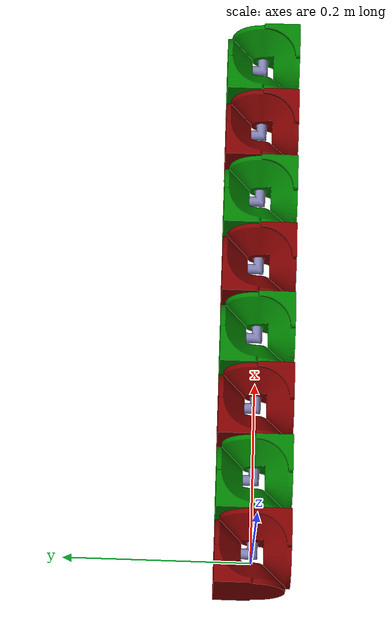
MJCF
<mujoco model="UBotModule">

	<visual>
		<global fovy="10" />
		<rgba haze="0.15 0.25 0.35 1" />
		<quality shadowsize="8192" />
		<map stiffness="700" shadowscale="1" fogstart="10" fogend="15" zfar="40" haze="0.3" />
	</visual>

	<compiler inertiafromgeom="auto" angle="degree" balanceinertia="true" boundmass="0.001"
		boundinertia="0.001"></compiler>
	<option timestep="0.005" iterations="50" solver="Newton" tolerance="1e-10" />
	<size njmax="500" nconmax="100" nstack="2000" />
	<default>
		<joint limited="true" damping="0" armature="0.1" stiffness="0" range="-90 90" ></joint>
		<geom contype="1" type="mesh" conaffinity="1" condim="3" margin="0.0001" solref=".02 1"
			solimp=".9 .95 .001 0.5 1"></geom>
		<mesh scale="1 1 1" />
		<position kp="100" />
		<camera pos="0.332 -0.105 0.364" xyaxes="0.140 0.990 0.000 -0.689 0.098 0.719" />
	</default>

	<asset>
		<texture type="skybox" builtin="gradient" rgb1="0.6 0.6 0.6" rgb2="0 0 0" width="512"
			height="512" />
		<mesh name="ma" file="./ma.obj" />
		<mesh name="mb" file="./mb.obj" />
		<mesh name="ax" file="./ax.obj" />
		<texture type="skybox" builtin="gradient" rgb1="0.3 0.5 0.7" rgb2="0 0 0" width="512"
			height="512" />
		<texture name="texplane" type="2d" builtin="checker" rgb1=".2 .3 .4" rgb2=".1 0.15 0.2"
			width="512" height="512" mark="cross" markrgb=".8 .8 .8" />
		<texture name="texcarpet" type="2d" file="carpet.png" />
		<texture name="texsponge" type="2d" file="sponge.png" />
		<texture name="texmarble" type="cube" file="marble.png" />
		<texture name="texgeom" type="cube" builtin="flat" mark="cross" width="127" height="1278"
			rgb1="0.8 0.6 0.4" rgb2="0.8 0.6 0.4" markrgb="1 1 1" random="0.01"></texture>
		<material name="geom" texture="texgeom" texuniform="true"></material>
		<material name="matplane" reflectance="0.3" texture="texplane" texrepeat="5 5"
			texuniform="true" />
		<material name="matcarpet" texture="texcarpet" />
		<material name="matsponge" texture="texsponge" specular="0.3" />
		<material name="matmarble" texture="texmarble" rgba=".7 .7 .7 1" />
		<material name="ma" specular="1" shininess="1" emission="0"
			rgba="0.5119999961853026 0.0 0.0 1.0" />
		<material name="mb" specular="1" shininess="1" />
	</asset>

	<worldbody>
		<geom name="ground" type="plane" size="0 0 1" pos="0 0 0" quat="1 0 0 0" rgba="1 1 1 1"
			material="matplane" contype="127" conaffinity="127" condim="1" />
		<light directional="true" diffuse="1.0 1.0 1.0" specular=".1 .1 .1" pos="0.0 0.0 1"
			dir="0 0 -1" />

		<!--light directional="false" diffuse="1.0 1.0 1.0" specular=".1 .1 .1" pos="-1 -1 1" dir="1
		1 -1"/-->
		<body name="ma_0" pos="0.0 0.0 0.04" euler="90 90 0">
			<geom name="ma_0" mesh="ma" material="ma" rgba="0.5 0.0 0.0 1.0" contype="1"
				conaffinity="1" />
			<inertial pos="0        0        0" mass="0.2" />
			<freejoint name="root" />
			<body name="ax_0" pos="0.0 0.0 0.0">
				<geom name="ax_0" mesh="ax" rgba="0.5 0.5 0.7 1" contype="2" conaffinity="2" />
				<inertial pos="0        0        0" mass="0.02" />
				<joint name="axis1_0" axis="1        0        0" />
				<body name="mb_0" pos="0.0 0.0 0.0">
					<geom name="mb_0" mesh="mb" material="mb" rgba="0.5 0.0 0.0 1" contype="4"
						conaffinity="4" />
					<inertial pos="0        0        0" mass="0.2" />
					<joint name="axis2_0" type="hinge" axis="0        0        1" />
					<body name="ma_1" pos="0.0 0.0 0.08" euler="0 0 0">
						<geom name="ma_1" mesh="ma" material="ma" rgba="0.0 0.5 0.0 1" contype="8"
							conaffinity="8" />
						<inertial pos="0        0        0" mass="0.2" />
						<body name="ax_1" pos="0.0 0.0 0.0">
							<geom name="ax_1" type="mesh" mesh="ax" rgba="0.5 0.5 0.7 1"
								contype="16" conaffinity="16" />
							<inertial pos="0        0        0" mass="0.02" />
							<joint name="axis1_1" axis="1        0        0" />
							<body name="mb_1" pos="0.0 0.0 0.0">
								<geom name="mb_1" type="mesh" mesh="mb" material="mb"
									rgba="0.0 0.5 0.0 1" contype="32" conaffinity="32" />
								<inertial pos="0        0        0" mass="0.2" />
								<joint name="axis2_1" axis="0        0        1" />
								<body name="ma_2" pos="0.0 0.0 0.08" euler="0 0 0">
									<geom name="ma_2" mesh="ma" material="ma" rgba="0.5 0.0 0.0 1"
										contype="8" conaffinity="8" />
									<inertial pos="0        0        0" mass="0.2" />
									<body name="ax_2" pos="0.0 0.0 0.0">
										<geom name="ax_2" type="mesh" mesh="ax" rgba="0.5 0.5 0.7 1"
											contype="16" conaffinity="16" />
										<inertial pos="0        0        0" mass="0.02" />
										<joint name="axis1_2" axis="1        0        0" />
										<body name="mb_2" pos="0.0 0.0 0.0">
											<geom name="mb_2" type="mesh" mesh="mb" material="mb"
												rgba="0.5 0.0 0.0 1" contype="32" conaffinity="32" />
											<inertial pos="0        0        0" mass="0.2" />
											<joint name="axis2_2" axis="0        0        1" />
											<body name="ma_3" pos="0.0 0.0 0.08" euler="0 0 0">
												<geom name="ma_3" mesh="ma" material="ma"
													rgba="0.0 0.5 0.0 1" contype="8" conaffinity="8" />
												<inertial pos="0        0        0" mass="0.2" />
												<body name="ax_3" pos="0.0 0.0 0.0">
													<geom name="ax_3" type="mesh" mesh="ax"
														rgba="0.5 0.5 0.7 1" contype="16"
														conaffinity="16" />
													<inertial pos="0        0        0" mass="0.02" />
													<joint name="axis1_3" axis="1        0        0" />
													<body name="mb_3" pos="0.0 0.0 0.0">
														<geom name="mb_3" type="mesh" mesh="mb"
															material="mb" rgba="0.0 0.5 0.0 1"
															contype="32" conaffinity="32" />
														<inertial pos="0        0        0"
															mass="0.2" />
														<joint name="axis2_3"
															axis="0        0        1" />
														<body name="ma_4" pos="0.0 0.0 0.08"
															euler="0 0 0">
															<geom name="ma_4" mesh="ma"
																material="ma" rgba="0.5 0.0 0.0 1"
																contype="8" conaffinity="8" />
															<inertial pos="0        0        0"
																mass="0.2" />
															<body name="ax_4" pos="0.0 0.0 0.0">
																<geom name="ax_4" type="mesh"
																	mesh="ax" rgba="0.5 0.5 0.7 1"
																	contype="16" conaffinity="16" />
																<inertial pos="0        0        0"
																	mass="0.02" />
																<joint name="axis1_4"
																	axis="1        0        0" />
																<body name="mb_4" pos="0.0 0.0 0.0">
																	<geom name="mb_4" type="mesh"
																		mesh="mb" material="mb"
																		rgba="0.5 0.0 0.0 1"
																		contype="32"
																		conaffinity="32" />
																	<inertial
																		pos="0        0        0"
																		mass="0.2" />
																	<joint name="axis2_4"
																		axis="0        0        1" />
																	<body name="ma_5"
																		pos="0.0 0.0 0.08"
																		euler="0 0 0">
																		<geom name="ma_5" mesh="ma"
																			material="ma"
																			rgba="0.0 0.5 0.0 1"
																			contype="8"
																			conaffinity="8" />
																		<inertial
																			pos="0        0        0"
																			mass="0.2" />
																		<body name="ax_5"
																			pos="0.0 0.0 0.0">
																			<geom name="ax_5"
																				type="mesh"
																				mesh="ax"
																				rgba="0.5 0.5 0.7 1"
																				contype="16"
																				conaffinity="16" />
																			<inertial
																				pos="0        0        0"
																				mass="0.02" />
																			<joint name="axis1_5"
																				axis="1        0        0" />
																			<body name="mb_5"
																				pos="0.0 0.0 0.0">
																				<geom name="mb_5"
																					type="mesh"
																					mesh="mb"
																					material="mb"
																					rgba="0.0 0.5 0.0 1"
																					contype="32"
																					conaffinity="32" />
																				<inertial
																					pos="0        0        0"
																					mass="0.2" />
																				<joint
																					name="axis2_5"
																					axis="0        0        1" />
																				<body name="ma_6"
																					pos="0.0 0.0 0.08"
																					euler="0 0 0">
																					<geom
																						name="ma_6"
																						mesh="ma"
																						material="ma"
																						rgba="0.5 0.0 0.0 1"
																						contype="8"
																						conaffinity="8" />
																					<inertial
																						pos="0        0        0"
																						mass="0.2" />
																					<body
																						name="ax_6"
																						pos="0.0 0.0 0.0">
																						<geom
																							name="ax_6"
																							type="mesh"
																							mesh="ax"
																							rgba="0.5 0.5 0.7 1"
																							contype="16"
																							conaffinity="16" />
																						<inertial
																							pos="0        0        0"
																							mass="0.02" />
																						<joint
																							name="axis1_6"
																							axis="1        0        0" />
																						<body
																							name="mb_6"
																							pos="0.0 0.0 0.0">
																							<geom
																								name="mb_6"
																								type="mesh"
																								mesh="mb"
																								material="mb"
																								rgba="0.5 0.0 0.0 1"
																								contype="32"
																								conaffinity="32" />
																							<inertial
																								pos="0        0        0"
																								mass="0.2" />
																							<joint
																								name="axis2_6"
																								axis="0        0        1" />
																							<body
																								name="ma_7"
																								pos="0.0 0.0 0.08"
																								euler="0 0 0">
																								<geom
																									name="ma_7"
																									mesh="ma"
																									material="ma"
																									rgba="0.0 0.5 0.0 1"
																									contype="8"
																									conaffinity="8" />
																								<inertial
																									pos="0        0        0"
																									mass="0.2" />
																								<body
																									name="ax_7"
																									pos="0.0 0.0 0.0">
																									<geom
																										name="ax_7"
																										type="mesh"
																										mesh="ax"
																										rgba="0.5 0.5 0.7 1"
																										contype="16"
																										conaffinity="16" />
																									<inertial
																										pos="0        0        0"
																										mass="0.02" />
																									<joint
																										name="axis1_7"
																										axis="1        0        0" />
																									<body
																										name="mb_7"
																										pos="0.0 0.0 0.0">
																										<geom
																											name="mb_7"
																											type="mesh"
																											mesh="mb"
																											material="mb"
																											rgba="0.0 0.5 0.0 1"
																											contype="32"
																											conaffinity="32" />
																										<inertial
																											pos="0        0        0"
																											mass="0.2" />
																										<joint
																											name="axis2_7"
																											axis="0        0        1" />
																									</body>
																								</body>
																							</body>
																						</body>
																					</body>
																				</body>
																			</body>
																		</body>
																	</body>
																</body>
															</body>
														</body>
													</body>
												</body>
											</body>
										</body>
									</body>
								</body>
							</body>
						</body>
					</body>
				</body>
			</body>
		</body>
	</worldbody>
	<actuator>
		<position name="motor1_0"	joint="axis1_0"		kp="1000"/>
		<velocity name="motor_vel_1_0"	joint="axis1_0"		kv="10"/>
		<position name="motor2_0"	joint="axis2_0" kp="1000"/>
		<velocity name="motor_vel_2_0"	joint="axis2_0"		kv="10"/>
		<position name="motor1_1"	joint="axis1_1"		kp="1000"/>
		<velocity name="motor_vel_1_1"	joint="axis1_1"		kv="10"/>
		<position name="motor2_1"	joint="axis2_1"		kp="1000"/>
		<velocity name="motor_vel_2_1"	joint="axis2_1"		kv="10"/>
		<position name="motor1_2"	joint="axis1_2"		kp="1000"/>
		<velocity name="motor_vel_1_2"	joint="axis1_2"		kv="10"/>
		<position name="motor2_2"	joint="axis2_2"		kp="1000"/>
		<velocity name="motor_vel_2_2"	joint="axis2_2"		kv="10"/>
		<position name="motor1_3"	joint="axis1_3"		kp="1000"/>
		<velocity name="motor_vel_1_3"	joint="axis1_3"		kv="10"/>
		<position name="motor2_3"	joint="axis2_3"		kp="1000"/>
		<velocity name="motor_vel_2_3"	joint="axis2_3"		kv="10"/>
		<position name="motor1_4"	joint="axis1_4"		kp="1000"/>
		<velocity name="motor_vel_1_4"	joint="axis1_4"		kv="10"/>
		<position name="motor2_4"	joint="axis2_4" kp="1000"/>
		<velocity name="motor_vel_2_4"	joint="axis2_4"		kv="10"/>
		<position name="motor1_5"	joint="axis1_5"		kp="1000"/>
		<velocity name="motor_vel_1_5"	joint="axis1_5"		kv="10"/>
		<position name="motor2_5"	joint="axis2_5"		kp="1000"/>
		<velocity name="motor_vel_2_5"	joint="axis2_5"		kv="10"/>
		<position name="motor1_6"	joint="axis1_6"		kp="1000"/>
		<velocity name="motor_vel_1_6"	joint="axis1_6"		kv="10"/>
		<position name="motor2_6"	joint="axis2_6"		kp="1000"/>
		<velocity name="motor_vel_2_6"	joint="axis2_6"		kv="10"/>
		<position name="motor1_7"	joint="axis1_7"		kp="1000"/>
		<velocity name="motor_vel_1_7"	joint="axis1_7"		kv="10"/>
		<position name="motor2_7"	joint="axis2_7"		kp="1000"/>
		<velocity name="motor_vel_2_7"	joint="axis2_7"		kv="10"/>
	</actuator>
</mujoco>
